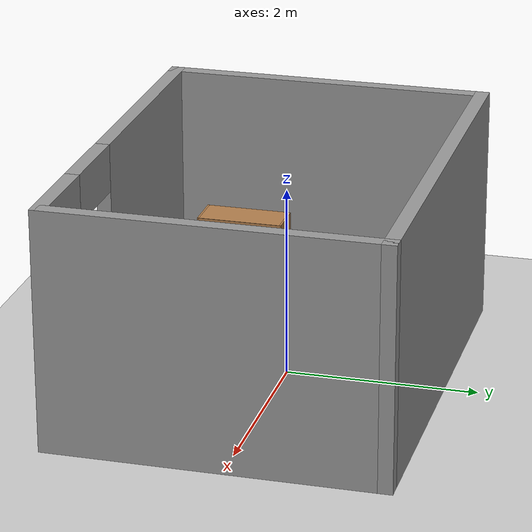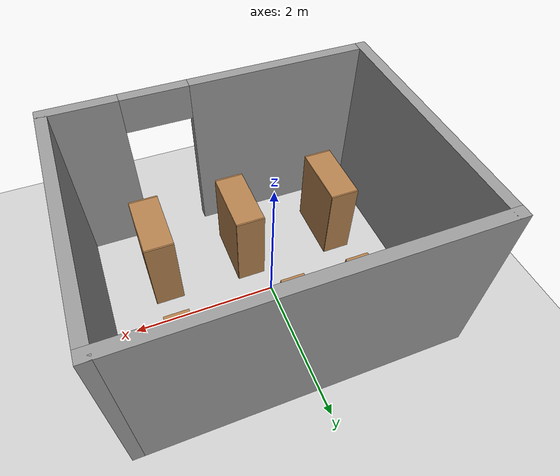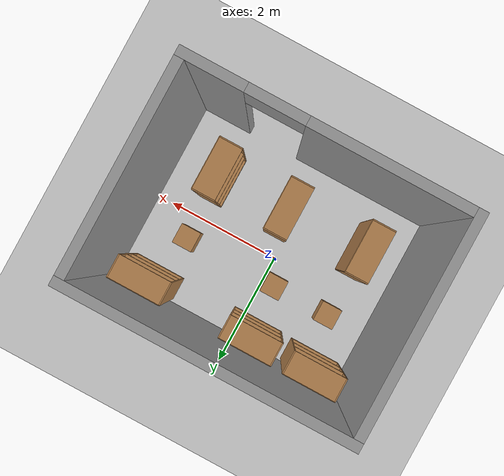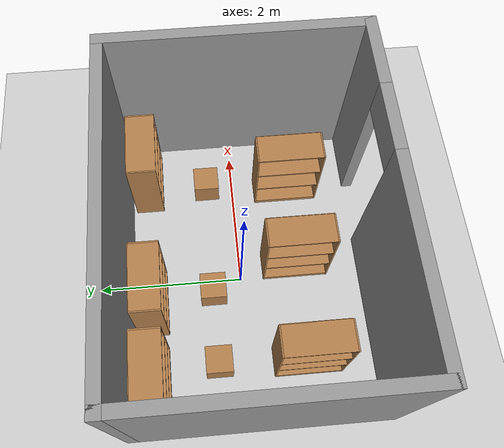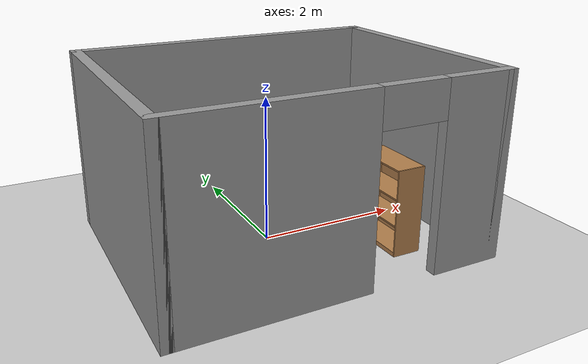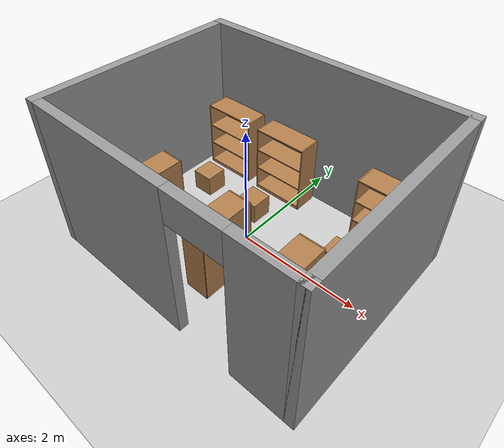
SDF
<sdf version="1.7">
 <world name="default">
  <model name="ground_plane">
   <static>1</static>
   <link name="link">
    <collision name="collision">
     <geometry><plane><normal>0 0 1</normal><size>100 100</size></plane></geometry>
     <surface><friction><ode><mu>100</mu><mu2>50</mu2></ode></friction></surface>
    </collision>
    <visual name="visual">
     <cast_shadows>0</cast_shadows>
     <geometry><plane><normal>0 0 1</normal><size>100 100</size></plane></geometry>
     <material>
      <script>
       <uri>file://install/models/media/materials/scripts/gazebo.material</uri>
       <name>Gazebo/Grey</name>
      </script>
     </material>
    </visual>
   </link>
  </model>
  <gravity>0 0 -9.8</gravity>
  <magnetic_field>6e-06 2.3e-05 -4.2e-05</magnetic_field>
  <atmosphere type="adiabatic"/>
  <physics type="ode">
   <max_step_size>0.001</max_step_size>
   <real_time_factor>1</real_time_factor>
   <real_time_update_rate>1000</real_time_update_rate>
  </physics>
  <scene><ambient>0.4 0.4 0.4 1</ambient><background>0.7 0.7 0.7 1</background><shadows>1</shadows></scene>
  <spherical_coordinates>
   <surface_model>EARTH_WGS84</surface_model>
   <latitude_deg>0</latitude_deg>
   <longitude_deg>0</longitude_deg>
   <elevation>0</elevation>
   <heading_deg>0</heading_deg>
  </spherical_coordinates>
  <model name="big_room">
   <pose>0.157884 1.65993 0 0 -0 0</pose>
   <link name="Wall_0">
    <collision name="Wall_0_Collision">
     <geometry><box><size>4.5 0.15 2.5</size></box></geometry>
     <pose>0 0 1.25 0 -0 0</pose>
    </collision>
    <visual name="Wall_0_Visual">
     <pose>0 0 1.25 0 -0 0</pose>
     <geometry><box><size>4.5 0.15 2.5</size></box></geometry>
     <material>
      <script>
       <uri>file://install/models/media/materials/scripts/gazebo.material</uri>
       <name>Gazebo/Grey</name>
      </script>
      <ambient>1 1 1 1</ambient>
     </material>
     <meta><layer>0</layer></meta>
    </visual>
    <pose>-0 -0.0775 0 0 -0 3.14159</pose>
   </link>
   <link name="Wall_1">
    <collision name="Wall_1_Collision">
     <geometry><box><size>3.5 0.15 2.5</size></box></geometry>
     <pose>0 0 1.25 0 -0 0</pose>
    </collision>
    <visual name="Wall_1_Visual">
     <pose>0 0 1.25 0 -0 0</pose>
     <geometry><box><size>3.5 0.15 2.5</size></box></geometry>
     <material>
      <script>
       <uri>file://install/models/media/materials/scripts/gazebo.material</uri>
       <name>Gazebo/Grey</name>
      </script>
      <ambient>1 1 1 1</ambient>
     </material>
     <meta><layer>0</layer></meta>
    </visual>
    <pose>-2.175 -1.7525 0 0 -0 -1.5708</pose>
   </link>
   <link name="Wall_2">
    <pose>-0 -3.4275 0 0 -0 0</pose>
    <visual name="Wall_2_Visual_0">
     <pose>-0.955729 0 1.25 0 -0 0</pose>
     <geometry><box><size>2.58854 0.15 2.5</size></box></geometry>
     <material>
      <script>
       <uri>file://install/models/media/materials/scripts/gazebo.material</uri>
       <name>Gazebo/Grey</name>
      </script>
      <ambient>1 1 1 1</ambient>
     </material>
     <meta><layer>0</layer></meta>
    </visual>
    <collision name="Wall_2_Collision_0">
     <geometry><box><size>2.58854 0.15 2.5</size></box></geometry>
     <pose>-0.955729 0 1.25 0 -0 0</pose>
    </collision>
    <visual name="Wall_2_Visual_1">
     <pose>1.74427 0 1.25 0 -0 0</pose>
     <geometry><box><size>1.01146 0.15 2.5</size></box></geometry>
     <material>
      <script>
       <uri>file://install/models/media/materials/scripts/gazebo.material</uri>
       <name>Gazebo/Grey</name>
      </script>
      <ambient>1 1 1 1</ambient>
     </material>
     <meta><layer>0</layer></meta>
    </visual>
    <collision name="Wall_2_Collision_1">
     <geometry><box><size>1.01146 0.15 2.5</size></box></geometry>
     <pose>1.74427 0 1.25 0 -0 0</pose>
    </collision>
    <visual name="Wall_2_Visual_2">
     <pose>0.788542 0 2.25 0 -0 0</pose>
     <geometry><box><size>0.9 0.15 0.5</size></box></geometry>
     <material>
      <script>
       <uri>file://install/models/media/materials/scripts/gazebo.material</uri>
       <name>Gazebo/Grey</name>
      </script>
      <ambient>1 1 1 1</ambient>
     </material>
     <meta><layer>0</layer></meta>
    </visual>
    <collision name="Wall_2_Collision_2">
     <geometry><box><size>0.9 0.15 0.5</size></box></geometry>
     <pose>0.788542 0 2.25 0 -0 0</pose>
    </collision>
   </link>
   <link name="Wall_3">
    <collision name="Wall_3_Collision">
     <geometry><box><size>3.5 0.15 2.5</size></box></geometry>
     <pose>0 0 1.25 0 -0 0</pose>
    </collision>
    <visual name="Wall_3_Visual">
     <pose>0 0 1.25 0 -0 0</pose>
     <geometry><box><size>3.5 0.15 2.5</size></box></geometry>
     <material>
      <script>
       <uri>file://install/models/media/materials/scripts/gazebo.material</uri>
       <name>Gazebo/Grey</name>
      </script>
      <ambient>1 1 1 1</ambient>
     </material>
     <meta><layer>0</layer></meta>
    </visual>
    <pose>2.175 -1.7525 0 0 -0 1.5708</pose>
   </link>
   <static>1</static>
  </model>
  <model name="bookshelf">
   <static>1</static>
   <link name="link">
    <inertial><mass>1</mass></inertial>
    <collision name="back">
     <pose>0 0.005 0.6 0 -0 0</pose>
     <geometry><box><size>0.9 0.01 1.2</size></box></geometry>
    </collision>
    <visual name="visual1">
     <pose>0 0.005 0.6 0 -0 0</pose>
     <geometry><box><size>0.9 0.01 1.2</size></box></geometry>
     <material>
      <script>
       <uri>file://install/models/media/materials/scripts/gazebo.material</uri>
       <name>Gazebo/Wood</name>
      </script>
     </material>
    </visual>
    <collision name="left_side">
     <pose>0.45 -0.195 0.6 0 -0 0</pose>
     <geometry><box><size>0.02 0.4 1.2</size></box></geometry>
    </collision>
    <visual name="visual2">
     <pose>0.45 -0.195 0.6 0 -0 0</pose>
     <geometry><box><size>0.02 0.4 1.2</size></box></geometry>
     <material>
      <script>
       <uri>file://install/models/media/materials/scripts/gazebo.material</uri>
       <name>Gazebo/Wood</name>
      </script>
     </material>
    </visual>
    <collision name="right_side">
     <pose>-0.45 -0.195 0.6 0 -0 0</pose>
     <geometry><box><size>0.02 0.4 1.2</size></box></geometry>
    </collision>
    <visual name="visual3">
     <pose>-0.45 -0.195 0.6 0 -0 0</pose>
     <geometry><box><size>0.02 0.4 1.2</size></box></geometry>
     <material>
      <script>
       <uri>file://install/models/media/materials/scripts/gazebo.material</uri>
       <name>Gazebo/Wood</name>
      </script>
     </material>
    </visual>
    <collision name="bottom">
     <pose>0 -0.195 0.03 0 -0 0</pose>
     <geometry><box><size>0.88 0.4 0.06</size></box></geometry>
    </collision>
    <visual name="visual4">
     <pose>0 -0.195 0.03 0 -0 0</pose>
     <geometry><box><size>0.88 0.4 0.06</size></box></geometry>
     <material>
      <script>
       <uri>file://install/models/media/materials/scripts/gazebo.material</uri>
       <name>Gazebo/Wood</name>
      </script>
     </material>
    </visual>
    <collision name="top">
     <pose>0 -0.195 1.19 0 -0 0</pose>
     <geometry><box><size>0.88 0.4 0.02</size></box></geometry>
    </collision>
    <visual name="visual5">
     <pose>0 -0.195 1.19 0 -0 0</pose>
     <geometry><box><size>0.88 0.4 0.02</size></box></geometry>
     <material>
      <script>
       <uri>file://install/models/media/materials/scripts/gazebo.material</uri>
       <name>Gazebo/Wood</name>
      </script>
     </material>
    </visual>
    <collision name="low_shelf">
     <pose>0 -0.195 0.43 0 -0 0</pose>
     <geometry><box><size>0.88 0.4 0.02</size></box></geometry>
    </collision>
    <visual name="visual6">
     <pose>0 -0.195 0.43 0 -0 0</pose>
     <geometry><box><size>0.88 0.4 0.02</size></box></geometry>
     <material>
      <script>
       <uri>file://install/models/media/materials/scripts/gazebo.material</uri>
       <name>Gazebo/Wood</name>
      </script>
     </material>
    </visual>
    <collision name="high_shelf">
     <pose>0 -0.195 0.8 0 -0 0</pose>
     <geometry><box><size>0.88 0.4 0.02</size></box></geometry>
    </collision>
    <visual name="visual7">
     <pose>0 -0.195 0.8 0 -0 0</pose>
     <geometry><box><size>0.88 0.4 0.02</size></box></geometry>
     <material>
      <script>
       <uri>file://install/models/media/materials/scripts/gazebo.material</uri>
       <name>Gazebo/Wood</name>
      </script>
     </material>
    </visual>
   </link>
   <pose>-1.37334 1.45951 0 0 -0 0</pose>
  </model>
  <model name="bookshelf_clone">
   <static>1</static>
   <link name="link">
    <inertial><mass>1</mass></inertial>
    <collision name="back">
     <pose>0 0.005 0.6 0 -0 0</pose>
     <geometry><box><size>0.9 0.01 1.2</size></box></geometry>
    </collision>
    <visual name="visual1">
     <pose>0 0.005 0.6 0 -0 0</pose>
     <geometry><box><size>0.9 0.01 1.2</size></box></geometry>
     <material>
      <script>
       <uri>file://install/models/media/materials/scripts/gazebo.material</uri>
       <name>Gazebo/Wood</name>
      </script>
     </material>
    </visual>
    <collision name="left_side">
     <pose>0.45 -0.195 0.6 0 -0 0</pose>
     <geometry><box><size>0.02 0.4 1.2</size></box></geometry>
    </collision>
    <visual name="visual2">
     <pose>0.45 -0.195 0.6 0 -0 0</pose>
     <geometry><box><size>0.02 0.4 1.2</size></box></geometry>
     <material>
      <script>
       <uri>file://install/models/media/materials/scripts/gazebo.material</uri>
       <name>Gazebo/Wood</name>
      </script>
     </material>
    </visual>
    <collision name="right_side">
     <pose>-0.45 -0.195 0.6 0 -0 0</pose>
     <geometry><box><size>0.02 0.4 1.2</size></box></geometry>
    </collision>
    <visual name="visual3">
     <pose>-0.45 -0.195 0.6 0 -0 0</pose>
     <geometry><box><size>0.02 0.4 1.2</size></box></geometry>
     <material>
      <script>
       <uri>file://install/models/media/materials/scripts/gazebo.material</uri>
       <name>Gazebo/Wood</name>
      </script>
     </material>
    </visual>
    <collision name="bottom">
     <pose>0 -0.195 0.03 0 -0 0</pose>
     <geometry><box><size>0.88 0.4 0.06</size></box></geometry>
    </collision>
    <visual name="visual4">
     <pose>0 -0.195 0.03 0 -0 0</pose>
     <geometry><box><size>0.88 0.4 0.06</size></box></geometry>
     <material>
      <script>
       <uri>file://install/models/media/materials/scripts/gazebo.material</uri>
       <name>Gazebo/Wood</name>
      </script>
     </material>
    </visual>
    <collision name="top">
     <pose>0 -0.195 1.19 0 -0 0</pose>
     <geometry><box><size>0.88 0.4 0.02</size></box></geometry>
    </collision>
    <visual name="visual5">
     <pose>0 -0.195 1.19 0 -0 0</pose>
     <geometry><box><size>0.88 0.4 0.02</size></box></geometry>
     <material>
      <script>
       <uri>file://install/models/media/materials/scripts/gazebo.material</uri>
       <name>Gazebo/Wood</name>
      </script>
     </material>
    </visual>
    <collision name="low_shelf">
     <pose>0 -0.195 0.43 0 -0 0</pose>
     <geometry><box><size>0.88 0.4 0.02</size></box></geometry>
    </collision>
    <visual name="visual6">
     <pose>0 -0.195 0.43 0 -0 0</pose>
     <geometry><box><size>0.88 0.4 0.02</size></box></geometry>
     <material>
      <script>
       <uri>file://install/models/media/materials/scripts/gazebo.material</uri>
       <name>Gazebo/Wood</name>
      </script>
     </material>
    </visual>
    <collision name="high_shelf">
     <pose>0 -0.195 0.8 0 -0 0</pose>
     <geometry><box><size>0.88 0.4 0.02</size></box></geometry>
    </collision>
    <visual name="visual7">
     <pose>0 -0.195 0.8 0 -0 0</pose>
     <geometry><box><size>0.88 0.4 0.02</size></box></geometry>
     <material>
      <script>
       <uri>file://install/models/media/materials/scripts/gazebo.material</uri>
       <name>Gazebo/Wood</name>
      </script>
     </material>
    </visual>
   </link>
   <pose>-0.259012 1.44758 0 0 -0 0</pose>
  </model>
  <model name="bookshelf_clone_0">
   <static>1</static>
   <link name="link">
    <inertial><mass>1</mass></inertial>
    <collision name="back">
     <pose>0 0.005 0.6 0 -0 0</pose>
     <geometry><box><size>0.9 0.01 1.2</size></box></geometry>
    </collision>
    <visual name="visual1">
     <pose>0 0.005 0.6 0 -0 0</pose>
     <geometry><box><size>0.9 0.01 1.2</size></box></geometry>
     <material>
      <script>
       <uri>file://install/models/media/materials/scripts/gazebo.material</uri>
       <name>Gazebo/Wood</name>
      </script>
     </material>
    </visual>
    <collision name="left_side">
     <pose>0.45 -0.195 0.6 0 -0 0</pose>
     <geometry><box><size>0.02 0.4 1.2</size></box></geometry>
    </collision>
    <visual name="visual2">
     <pose>0.45 -0.195 0.6 0 -0 0</pose>
     <geometry><box><size>0.02 0.4 1.2</size></box></geometry>
     <material>
      <script>
       <uri>file://install/models/media/materials/scripts/gazebo.material</uri>
       <name>Gazebo/Wood</name>
      </script>
     </material>
    </visual>
    <collision name="right_side">
     <pose>-0.45 -0.195 0.6 0 -0 0</pose>
     <geometry><box><size>0.02 0.4 1.2</size></box></geometry>
    </collision>
    <visual name="visual3">
     <pose>-0.45 -0.195 0.6 0 -0 0</pose>
     <geometry><box><size>0.02 0.4 1.2</size></box></geometry>
     <material>
      <script>
       <uri>file://install/models/media/materials/scripts/gazebo.material</uri>
       <name>Gazebo/Wood</name>
      </script>
     </material>
    </visual>
    <collision name="bottom">
     <pose>0 -0.195 0.03 0 -0 0</pose>
     <geometry><box><size>0.88 0.4 0.06</size></box></geometry>
    </collision>
    <visual name="visual4">
     <pose>0 -0.195 0.03 0 -0 0</pose>
     <geometry><box><size>0.88 0.4 0.06</size></box></geometry>
     <material>
      <script>
       <uri>file://install/models/media/materials/scripts/gazebo.material</uri>
       <name>Gazebo/Wood</name>
      </script>
     </material>
    </visual>
    <collision name="top">
     <pose>0 -0.195 1.19 0 -0 0</pose>
     <geometry><box><size>0.88 0.4 0.02</size></box></geometry>
    </collision>
    <visual name="visual5">
     <pose>0 -0.195 1.19 0 -0 0</pose>
     <geometry><box><size>0.88 0.4 0.02</size></box></geometry>
     <material>
      <script>
       <uri>file://install/models/media/materials/scripts/gazebo.material</uri>
       <name>Gazebo/Wood</name>
      </script>
     </material>
    </visual>
    <collision name="low_shelf">
     <pose>0 -0.195 0.43 0 -0 0</pose>
     <geometry><box><size>0.88 0.4 0.02</size></box></geometry>
    </collision>
    <visual name="visual6">
     <pose>0 -0.195 0.43 0 -0 0</pose>
     <geometry><box><size>0.88 0.4 0.02</size></box></geometry>
     <material>
      <script>
       <uri>file://install/models/media/materials/scripts/gazebo.material</uri>
       <name>Gazebo/Wood</name>
      </script>
     </material>
    </visual>
    <collision name="high_shelf">
     <pose>0 -0.195 0.8 0 -0 0</pose>
     <geometry><box><size>0.88 0.4 0.02</size></box></geometry>
    </collision>
    <visual name="visual7">
     <pose>0 -0.195 0.8 0 -0 0</pose>
     <geometry><box><size>0.88 0.4 0.02</size></box></geometry>
     <material>
      <script>
       <uri>file://install/models/media/materials/scripts/gazebo.material</uri>
       <name>Gazebo/Wood</name>
      </script>
     </material>
    </visual>
   </link>
   <pose>1.66068 1.44593 0 0 -0 0</pose>
  </model>
  <model name="bookshelf_clone_1">
   <static>1</static>
   <link name="link">
    <inertial><mass>1</mass></inertial>
    <collision name="back">
     <pose>0 0.005 0.6 0 -0 0</pose>
     <geometry><box><size>0.9 0.01 1.2</size></box></geometry>
    </collision>
    <visual name="visual1">
     <pose>0 0.005 0.6 0 -0 0</pose>
     <geometry><box><size>0.9 0.01 1.2</size></box></geometry>
     <material>
      <script>
       <uri>file://install/models/media/materials/scripts/gazebo.material</uri>
       <name>Gazebo/Wood</name>
      </script>
     </material>
    </visual>
    <collision name="left_side">
     <pose>0.45 -0.195 0.6 0 -0 0</pose>
     <geometry><box><size>0.02 0.4 1.2</size></box></geometry>
    </collision>
    <visual name="visual2">
     <pose>0.45 -0.195 0.6 0 -0 0</pose>
     <geometry><box><size>0.02 0.4 1.2</size></box></geometry>
     <material>
      <script>
       <uri>file://install/models/media/materials/scripts/gazebo.material</uri>
       <name>Gazebo/Wood</name>
      </script>
     </material>
    </visual>
    <collision name="right_side">
     <pose>-0.45 -0.195 0.6 0 -0 0</pose>
     <geometry><box><size>0.02 0.4 1.2</size></box></geometry>
    </collision>
    <visual name="visual3">
     <pose>-0.45 -0.195 0.6 0 -0 0</pose>
     <geometry><box><size>0.02 0.4 1.2</size></box></geometry>
     <material>
      <script>
       <uri>file://install/models/media/materials/scripts/gazebo.material</uri>
       <name>Gazebo/Wood</name>
      </script>
     </material>
    </visual>
    <collision name="bottom">
     <pose>0 -0.195 0.03 0 -0 0</pose>
     <geometry><box><size>0.88 0.4 0.06</size></box></geometry>
    </collision>
    <visual name="visual4">
     <pose>0 -0.195 0.03 0 -0 0</pose>
     <geometry><box><size>0.88 0.4 0.06</size></box></geometry>
     <material>
      <script>
       <uri>file://install/models/media/materials/scripts/gazebo.material</uri>
       <name>Gazebo/Wood</name>
      </script>
     </material>
    </visual>
    <collision name="top">
     <pose>0 -0.195 1.19 0 -0 0</pose>
     <geometry><box><size>0.88 0.4 0.02</size></box></geometry>
    </collision>
    <visual name="visual5">
     <pose>0 -0.195 1.19 0 -0 0</pose>
     <geometry><box><size>0.88 0.4 0.02</size></box></geometry>
     <material>
      <script>
       <uri>file://install/models/media/materials/scripts/gazebo.material</uri>
       <name>Gazebo/Wood</name>
      </script>
     </material>
    </visual>
    <collision name="low_shelf">
     <pose>0 -0.195 0.43 0 -0 0</pose>
     <geometry><box><size>0.88 0.4 0.02</size></box></geometry>
    </collision>
    <visual name="visual6">
     <pose>0 -0.195 0.43 0 -0 0</pose>
     <geometry><box><size>0.88 0.4 0.02</size></box></geometry>
     <material>
      <script>
       <uri>file://install/models/media/materials/scripts/gazebo.material</uri>
       <name>Gazebo/Wood</name>
      </script>
     </material>
    </visual>
    <collision name="high_shelf">
     <pose>0 -0.195 0.8 0 -0 0</pose>
     <geometry><box><size>0.88 0.4 0.02</size></box></geometry>
    </collision>
    <visual name="visual7">
     <pose>0 -0.195 0.8 0 -0 0</pose>
     <geometry><box><size>0.88 0.4 0.02</size></box></geometry>
     <material>
      <script>
       <uri>file://install/models/media/materials/scripts/gazebo.material</uri>
       <name>Gazebo/Wood</name>
      </script>
     </material>
    </visual>
   </link>
   <pose>0.381811 -0.781366 0 0 0 -1.56945</pose>
  </model>
  <model name="bookshelf_clone_1_clone">
   <static>1</static>
   <link name="link">
    <inertial><mass>1</mass></inertial>
    <collision name="back">
     <pose>0 0.005 0.6 0 -0 0</pose>
     <geometry><box><size>0.9 0.01 1.2</size></box></geometry>
    </collision>
    <visual name="visual1">
     <pose>0 0.005 0.6 0 -0 0</pose>
     <geometry><box><size>0.9 0.01 1.2</size></box></geometry>
     <material>
      <script>
       <uri>file://install/models/media/materials/scripts/gazebo.material</uri>
       <name>Gazebo/Wood</name>
      </script>
     </material>
    </visual>
    <collision name="left_side">
     <pose>0.45 -0.195 0.6 0 -0 0</pose>
     <geometry><box><size>0.02 0.4 1.2</size></box></geometry>
    </collision>
    <visual name="visual2">
     <pose>0.45 -0.195 0.6 0 -0 0</pose>
     <geometry><box><size>0.02 0.4 1.2</size></box></geometry>
     <material>
      <script>
       <uri>file://install/models/media/materials/scripts/gazebo.material</uri>
       <name>Gazebo/Wood</name>
      </script>
     </material>
    </visual>
    <collision name="right_side">
     <pose>-0.45 -0.195 0.6 0 -0 0</pose>
     <geometry><box><size>0.02 0.4 1.2</size></box></geometry>
    </collision>
    <visual name="visual3">
     <pose>-0.45 -0.195 0.6 0 -0 0</pose>
     <geometry><box><size>0.02 0.4 1.2</size></box></geometry>
     <material>
      <script>
       <uri>file://install/models/media/materials/scripts/gazebo.material</uri>
       <name>Gazebo/Wood</name>
      </script>
     </material>
    </visual>
    <collision name="bottom">
     <pose>0 -0.195 0.03 0 -0 0</pose>
     <geometry><box><size>0.88 0.4 0.06</size></box></geometry>
    </collision>
    <visual name="visual4">
     <pose>0 -0.195 0.03 0 -0 0</pose>
     <geometry><box><size>0.88 0.4 0.06</size></box></geometry>
     <material>
      <script>
       <uri>file://install/models/media/materials/scripts/gazebo.material</uri>
       <name>Gazebo/Wood</name>
      </script>
     </material>
    </visual>
    <collision name="top">
     <pose>0 -0.195 1.19 0 -0 0</pose>
     <geometry><box><size>0.88 0.4 0.02</size></box></geometry>
    </collision>
    <visual name="visual5">
     <pose>0 -0.195 1.19 0 -0 0</pose>
     <geometry><box><size>0.88 0.4 0.02</size></box></geometry>
     <material>
      <script>
       <uri>file://install/models/media/materials/scripts/gazebo.material</uri>
       <name>Gazebo/Wood</name>
      </script>
     </material>
    </visual>
    <collision name="low_shelf">
     <pose>0 -0.195 0.43 0 -0 0</pose>
     <geometry><box><size>0.88 0.4 0.02</size></box></geometry>
    </collision>
    <visual name="visual6">
     <pose>0 -0.195 0.43 0 -0 0</pose>
     <geometry><box><size>0.88 0.4 0.02</size></box></geometry>
     <material>
      <script>
       <uri>file://install/models/media/materials/scripts/gazebo.material</uri>
       <name>Gazebo/Wood</name>
      </script>
     </material>
    </visual>
    <collision name="high_shelf">
     <pose>0 -0.195 0.8 0 -0 0</pose>
     <geometry><box><size>0.88 0.4 0.02</size></box></geometry>
    </collision>
    <visual name="visual7">
     <pose>0 -0.195 0.8 0 -0 0</pose>
     <geometry><box><size>0.88 0.4 0.02</size></box></geometry>
     <material>
      <script>
       <uri>file://install/models/media/materials/scripts/gazebo.material</uri>
       <name>Gazebo/Wood</name>
      </script>
     </material>
    </visual>
   </link>
   <pose>1.62119 -0.786454 0 0 0 -1.56945</pose>
  </model>
  <model name="bookshelf_clone_1_clone_0">
   <static>1</static>
   <link name="link">
    <inertial><mass>1</mass></inertial>
    <collision name="back">
     <pose>0 0.005 0.6 0 -0 0</pose>
     <geometry><box><size>0.9 0.01 1.2</size></box></geometry>
    </collision>
    <visual name="visual1">
     <pose>0 0.005 0.6 0 -0 0</pose>
     <geometry><box><size>0.9 0.01 1.2</size></box></geometry>
     <material>
      <script>
       <uri>file://install/models/media/materials/scripts/gazebo.material</uri>
       <name>Gazebo/Wood</name>
      </script>
     </material>
    </visual>
    <collision name="left_side">
     <pose>0.45 -0.195 0.6 0 -0 0</pose>
     <geometry><box><size>0.02 0.4 1.2</size></box></geometry>
    </collision>
    <visual name="visual2">
     <pose>0.45 -0.195 0.6 0 -0 0</pose>
     <geometry><box><size>0.02 0.4 1.2</size></box></geometry>
     <material>
      <script>
       <uri>file://install/models/media/materials/scripts/gazebo.material</uri>
       <name>Gazebo/Wood</name>
      </script>
     </material>
    </visual>
    <collision name="right_side">
     <pose>-0.45 -0.195 0.6 0 -0 0</pose>
     <geometry><box><size>0.02 0.4 1.2</size></box></geometry>
    </collision>
    <visual name="visual3">
     <pose>-0.45 -0.195 0.6 0 -0 0</pose>
     <geometry><box><size>0.02 0.4 1.2</size></box></geometry>
     <material>
      <script>
       <uri>file://install/models/media/materials/scripts/gazebo.material</uri>
       <name>Gazebo/Wood</name>
      </script>
     </material>
    </visual>
    <collision name="bottom">
     <pose>0 -0.195 0.03 0 -0 0</pose>
     <geometry><box><size>0.88 0.4 0.06</size></box></geometry>
    </collision>
    <visual name="visual4">
     <pose>0 -0.195 0.03 0 -0 0</pose>
     <geometry><box><size>0.88 0.4 0.06</size></box></geometry>
     <material>
      <script>
       <uri>file://install/models/media/materials/scripts/gazebo.material</uri>
       <name>Gazebo/Wood</name>
      </script>
     </material>
    </visual>
    <collision name="top">
     <pose>0 -0.195 1.19 0 -0 0</pose>
     <geometry><box><size>0.88 0.4 0.02</size></box></geometry>
    </collision>
    <visual name="visual5">
     <pose>0 -0.195 1.19 0 -0 0</pose>
     <geometry><box><size>0.88 0.4 0.02</size></box></geometry>
     <material>
      <script>
       <uri>file://install/models/media/materials/scripts/gazebo.material</uri>
       <name>Gazebo/Wood</name>
      </script>
     </material>
    </visual>
    <collision name="low_shelf">
     <pose>0 -0.195 0.43 0 -0 0</pose>
     <geometry><box><size>0.88 0.4 0.02</size></box></geometry>
    </collision>
    <visual name="visual6">
     <pose>0 -0.195 0.43 0 -0 0</pose>
     <geometry><box><size>0.88 0.4 0.02</size></box></geometry>
     <material>
      <script>
       <uri>file://install/models/media/materials/scripts/gazebo.material</uri>
       <name>Gazebo/Wood</name>
      </script>
     </material>
    </visual>
    <collision name="high_shelf">
     <pose>0 -0.195 0.8 0 -0 0</pose>
     <geometry><box><size>0.88 0.4 0.02</size></box></geometry>
    </collision>
    <visual name="visual7">
     <pose>0 -0.195 0.8 0 -0 0</pose>
     <geometry><box><size>0.88 0.4 0.02</size></box></geometry>
     <material>
      <script>
       <uri>file://install/models/media/materials/scripts/gazebo.material</uri>
       <name>Gazebo/Wood</name>
      </script>
     </material>
    </visual>
   </link>
   <pose>-1.01692 -0.792023 0 0 0 -1.56945</pose>
  </model>
  <audio><device>default</device></audio>
  <model name="small_box_rl4greeros">
   <link name="link">
    <inertial>
     <mass>0.7</mass>
     <inertia>
      <ixx>0.116667</ixx>
      <ixy>0</ixy>
      <ixz>0</ixz>
      <iyy>0.116667</iyy>
      <iyz>0</iyz>
      <izz>0.116667</izz>
     </inertia>
    </inertial>
    <visual name="visual">
     <geometry><box><size>0.35 0.35 0.35</size></box></geometry>
     <material>
      <script>
       <name>Gazebo/Wood</name>
       <uri>file://install/models/media/materials/scripts/gazebo.material</uri>
      </script>
      <shader type="vertex"><normal_map>__default__</normal_map></shader>
      <ambient>0.3 0.3 0.3 1</ambient>
      <diffuse>0.7 0.7 0.7 1</diffuse>
      <specular>0.01 0.01 0.01 1</specular>
      <emissive>0 0 0 1</emissive>
     </material>
    </visual>
    <collision name="collision">
     <geometry><box><size>0.35 0.35 0.35</size></box></geometry>
     <surface>
      <friction>
       <ode><mu>1</mu><mu2>1</mu2><fdir1>0 0 0</fdir1><slip1>0</slip1><slip2>0</slip2></ode>
       <torsional>
        <coefficient>1</coefficient>
        <patch_radius>0</patch_radius>
        <surface_radius>0</surface_radius>
        <use_patch_radius>1</use_patch_radius>
        <ode><slip>0</slip></ode>
       </torsional>
      </friction>
      <bounce><restitution_coefficient>0</restitution_coefficient><threshold>1e+06</threshold></bounce>
      <contact>
       <collide_without_contact>0</collide_without_contact>
       <collide_without_contact_bitmask>1</collide_without_contact_bitmask>
       <collide_bitmask>1</collide_bitmask>
       <ode>
        <soft_cfm>0</soft_cfm>
        <soft_erp>0.2</soft_erp>
        <kp>1e+13</kp>
        <kd>1</kd>
        <max_vel>0.01</max_vel>
        <min_depth>0</min_depth>
       </ode>
       <bullet>
        <split_impulse>1</split_impulse>
        <split_impulse_penetration_threshold>-0.01</split_impulse_penetration_threshold>
        <soft_cfm>0</soft_cfm>
        <soft_erp>0.2</soft_erp>
        <kp>1e+13</kp>
        <kd>1</kd>
       </bullet>
      </contact>
     </surface>
    </collision>
   </link>
   <static>0</static>
   <pose>1.43749 0.388562 0.31 0 -0 0</pose>
  </model>
  <model name="small_box_rl4greeros_clone">
   <link name="link">
    <inertial>
     <mass>0.7</mass>
     <inertia>
      <ixx>0.116667</ixx>
      <ixy>0</ixy>
      <ixz>0</ixz>
      <iyy>0.116667</iyy>
      <iyz>0</iyz>
      <izz>0.116667</izz>
     </inertia>
    </inertial>
    <visual name="visual">
     <geometry><box><size>0.35 0.35 0.35</size></box></geometry>
     <material>
      <script>
       <name>Gazebo/Wood</name>
       <uri>file://install/models/media/materials/scripts/gazebo.material</uri>
      </script>
      <shader type="vertex"><normal_map>__default__</normal_map></shader>
      <ambient>0.3 0.3 0.3 1</ambient>
      <diffuse>0.7 0.7 0.7 1</diffuse>
      <specular>0.01 0.01 0.01 1</specular>
      <emissive>0 0 0 1</emissive>
     </material>
    </visual>
    <collision name="collision">
     <geometry><box><size>0.35 0.35 0.35</size></box></geometry>
     <surface>
      <friction>
       <ode><mu>1</mu><mu2>1</mu2><fdir1>0 0 0</fdir1><slip1>0</slip1><slip2>0</slip2></ode>
       <torsional>
        <coefficient>1</coefficient>
        <patch_radius>0</patch_radius>
        <surface_radius>0</surface_radius>
        <use_patch_radius>1</use_patch_radius>
        <ode><slip>0</slip></ode>
       </torsional>
      </friction>
      <bounce><restitution_coefficient>0</restitution_coefficient><threshold>1e+06</threshold></bounce>
      <contact>
       <collide_without_contact>0</collide_without_contact>
       <collide_without_contact_bitmask>1</collide_without_contact_bitmask>
       <collide_bitmask>1</collide_bitmask>
       <ode>
        <soft_cfm>0</soft_cfm>
        <soft_erp>0.2</soft_erp>
        <kp>1e+13</kp>
        <kd>1</kd>
        <max_vel>0.01</max_vel>
        <min_depth>0</min_depth>
       </ode>
       <bullet>
        <split_impulse>1</split_impulse>
        <split_impulse_penetration_threshold>-0.01</split_impulse_penetration_threshold>
        <soft_cfm>0</soft_cfm>
        <soft_erp>0.2</soft_erp>
        <kp>1e+13</kp>
        <kd>1</kd>
       </bullet>
      </contact>
     </surface>
    </collision>
   </link>
   <static>0</static>
   <pose>-0.208795 0.403217 0.31 0 -0 0</pose>
  </model>
  <model name="small_box_rl4greeros_clone_clone">
   <link name="link">
    <inertial>
     <mass>0.7</mass>
     <inertia>
      <ixx>0.116667</ixx>
      <ixy>0</ixy>
      <ixz>0</ixz>
      <iyy>0.116667</iyy>
      <iyz>0</iyz>
      <izz>0.116667</izz>
     </inertia>
    </inertial>
    <visual name="visual">
     <geometry><box><size>0.35 0.35 0.35</size></box></geometry>
     <material>
      <script>
       <name>Gazebo/Wood</name>
       <uri>file://install/models/media/materials/scripts/gazebo.material</uri>
      </script>
      <shader type="vertex"><normal_map>__default__</normal_map></shader>
      <ambient>0.3 0.3 0.3 1</ambient>
      <diffuse>0.7 0.7 0.7 1</diffuse>
      <specular>0.01 0.01 0.01 1</specular>
      <emissive>0 0 0 1</emissive>
     </material>
    </visual>
    <collision name="collision">
     <geometry><box><size>0.35 0.35 0.35</size></box></geometry>
     <surface>
      <friction>
       <ode><mu>1</mu><mu2>1</mu2><fdir1>0 0 0</fdir1><slip1>0</slip1><slip2>0</slip2></ode>
       <torsional>
        <coefficient>1</coefficient>
        <patch_radius>0</patch_radius>
        <surface_radius>0</surface_radius>
        <use_patch_radius>1</use_patch_radius>
        <ode><slip>0</slip></ode>
       </torsional>
      </friction>
      <bounce><restitution_coefficient>0</restitution_coefficient><threshold>1e+06</threshold></bounce>
      <contact>
       <collide_without_contact>0</collide_without_contact>
       <collide_without_contact_bitmask>1</collide_without_contact_bitmask>
       <collide_bitmask>1</collide_bitmask>
       <ode>
        <soft_cfm>0</soft_cfm>
        <soft_erp>0.2</soft_erp>
        <kp>1e+13</kp>
        <kd>1</kd>
        <max_vel>0.01</max_vel>
        <min_depth>0</min_depth>
       </ode>
       <bullet>
        <split_impulse>1</split_impulse>
        <split_impulse_penetration_threshold>-0.01</split_impulse_penetration_threshold>
        <soft_cfm>0</soft_cfm>
        <soft_erp>0.2</soft_erp>
        <kp>1e+13</kp>
        <kd>1</kd>
       </bullet>
      </contact>
     </surface>
    </collision>
   </link>
   <static>0</static>
   <pose>-1.20941 0.399823 0.31 0 -0 0</pose>
  </model>
  <light name="user_point_light_0" type="point">
   <pose>0.074508 0.119662 1 0 -0 0</pose>
   <diffuse>0.5 0.5 0.5 1</diffuse>
   <specular>0.1 0.1 0.1 1</specular>
   <attenuation>
    <range>20</range>
    <constant>0.5</constant>
    <linear>0.01</linear>
    <quadratic>0.001</quadratic>
   </attenuation>
   <cast_shadows>0</cast_shadows>
   <direction>0 0 -1</direction>
  </light>
 </world>
</sdf>
